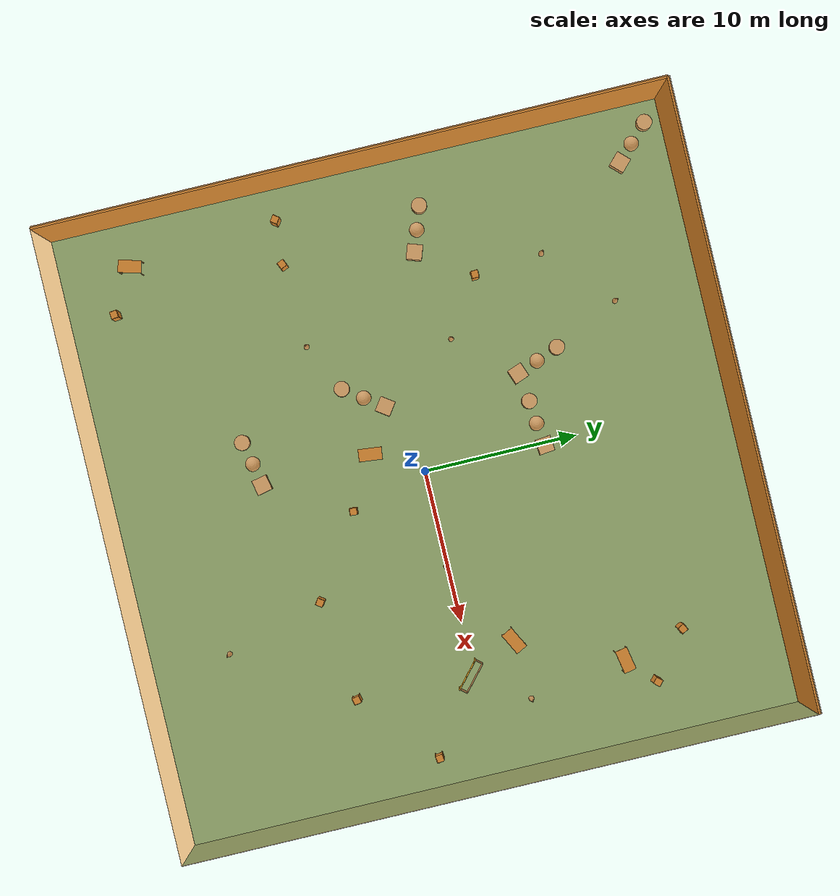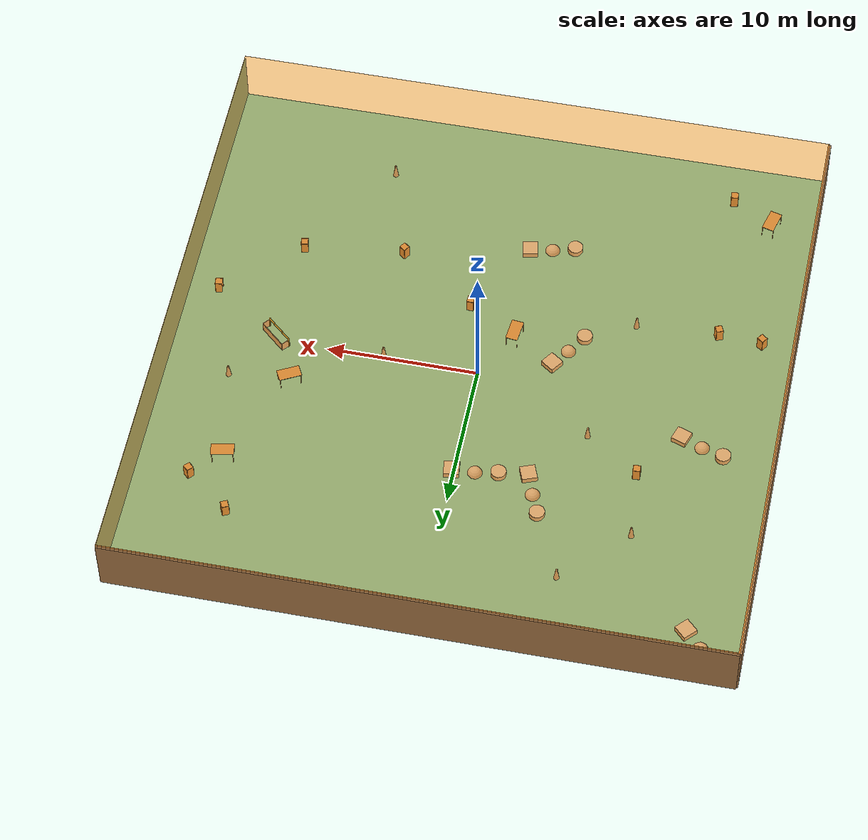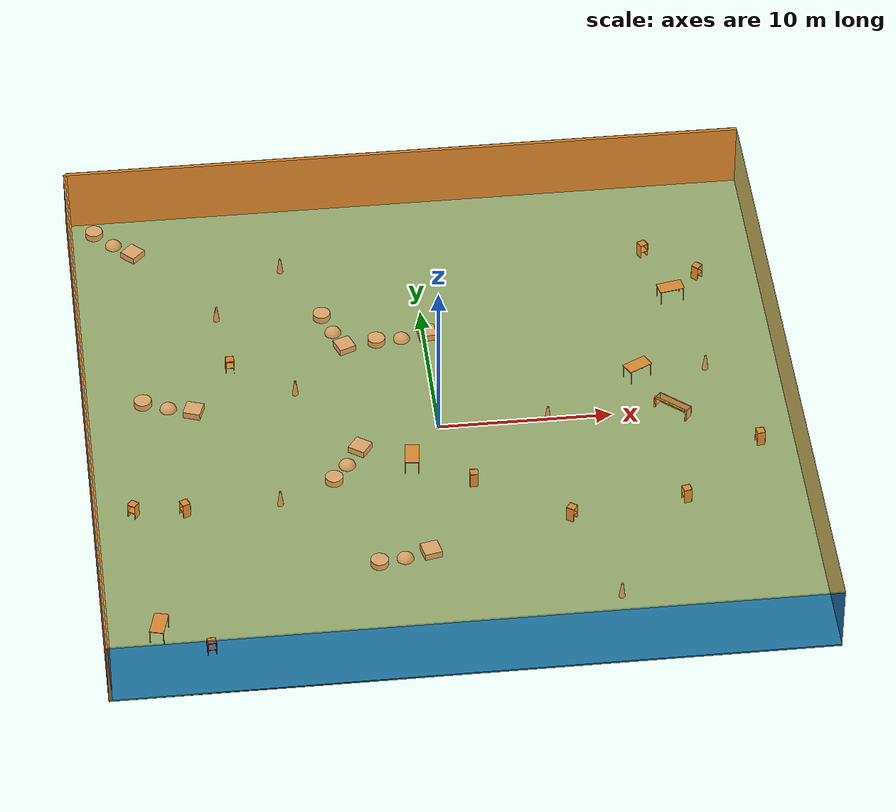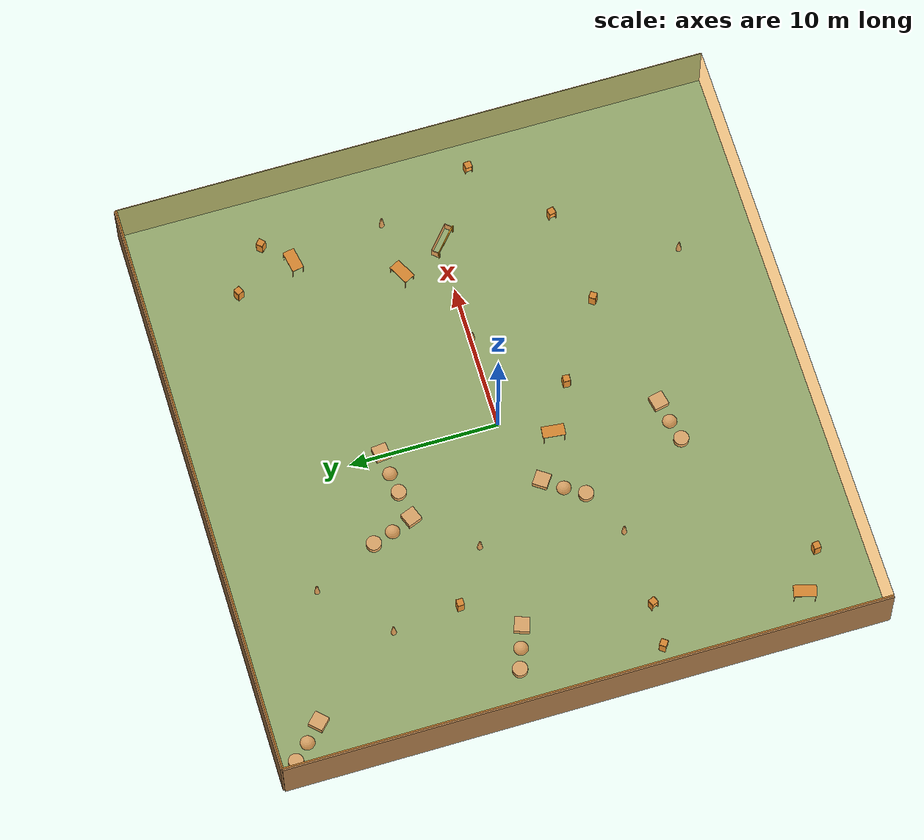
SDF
<sdf version="1.4">
 <world name="default">
  <physics type="ode">
   <max_step_size>0.001</max_step_size>
   <real_time_factor>1</real_time_factor>
   <real_time_update_rate>1000</real_time_update_rate>
   <gravity>0 0 -9.8</gravity>
  </physics>
  <scene><ambient>0.4 0.4 0.4 1</ambient><background>0.7 0.7 0.7 1</background><shadows>1</shadows></scene>
  <model name="Surrounding">
   <static>1</static>
   <link name="Ceiling">
    <collision name="Ceiling_Collision"><geometry><box><size>40 40 0.1</size></box></geometry></collision>
    <visual name="Ceiling_Visual">
     <geometry><box><size>40 40 0.1</size></box></geometry>
     <material>
      <script>
       <uri>file://media/materials/scripts/gazebo.material</uri>
       <name>Gazebo/OrangeTransparent</name>
      </script>
     </material>
    </visual>
    <pose>0 0 4.05 0 0 0</pose>
   </link>
   <link name="Wall_South">
    <collision name="Wall_South_Collision">
     <geometry><box><size>40 0 4</size></box></geometry>
     <pose>0 0 2 0 -0 0</pose>
    </collision>
    <visual name="Wall_South_Visual">
     <pose>0 0 2 0 -0 0</pose>
     <geometry><box><size>40 0 4</size></box></geometry>
     <material>
      <script><uri>file://media/materials/scripts/gazebo.material</uri><name>Gazebo/BlueTransparent</name></script>
     </material>
    </visual>
    <velocity_decay><linear>0</linear><angular>0</angular></velocity_decay>
    <pose>0 -20 0 0 -0 0</pose>
   </link>
   <link name="Wall_East">
    <collision name="Wall_21_Collision">
     <geometry><box><size>40 0 4</size></box></geometry>
     <pose>0 0 2 0 -0 0</pose>
    </collision>
    <visual name="Wall_21_Visual">
     <pose>0 0 2 0 -0 0</pose>
     <geometry><box><size>40 0 4</size></box></geometry>
     <material>
      <script><uri>file://media/materials/scripts/gazebo.material</uri><name>Gazebo/Turquoise</name></script>
     </material>
    </visual>
    <velocity_decay><linear>0</linear><angular>0</angular></velocity_decay>
    <pose>20 0 0 0 -0 1.5708</pose>
   </link>
   <link name="Wall_North">
    <collision name="Wall_22_Collision">
     <geometry><box><size>40 0.2 4</size></box></geometry>
     <pose>0 0 2 0 -0 0</pose>
    </collision>
    <visual name="Wall_22_Visual">
     <pose>0 0 2 0 -0 0</pose>
     <geometry><box><size>40 0.2 4</size></box></geometry>
     <material>
      <script><uri>file://media/materials/scripts/gazebo.material</uri><name>Gazebo/WoodFloor</name></script>
     </material>
    </visual>
    <velocity_decay><linear>0</linear><angular>0</angular></velocity_decay>
    <pose>0 20 0 0 -0 0</pose>
   </link>
   <link name="Wall_West">
    <collision name="Wall_23_Collision">
     <geometry><box><size>40 0.2 4</size></box></geometry>
     <pose>0 0 2 0 -0 0</pose>
    </collision>
    <visual name="Wall_23_Visual">
     <pose>0 0 2 0 -0 0</pose>
     <geometry><box><size>40 0.2 4</size></box></geometry>
     <material>
      <script><uri>file://media/materials/scripts/gazebo.material</uri><name>Gazebo/WoodFloor</name></script>
     </material>
    </visual>
    <velocity_decay><linear>0</linear><angular>0</angular></velocity_decay>
    <pose>-20 0 0 0 0 -1.5708</pose>
   </link>
   <link name="Ground_link">
    <collision name="collision">
     <pose>0 0 .05 0 -0 0</pose>
     <geometry><box><size>40 40 0.1</size></box></geometry>
    </collision>
    <visual name="visual">
     <pose>0 0 .05 0 -0 0</pose>
     <geometry><box><size>40 40 0.1</size></box></geometry>
     <material>
      <script>
       <uri>file://media/materials/scripts/gazebo.material</uri>
       <name>Gazebo/TurquoiseGlowOutline</name>
      </script>
     </material>
    </visual>
   </link>
   <static>1</static>
  </model>
  <spherical_coordinates>
   <surface_model>EARTH_WGS84</surface_model>
   <latitude_deg>0</latitude_deg>
   <longitude_deg>0</longitude_deg>
   <elevation>0</elevation>
   <heading_deg>0</heading_deg>
  </spherical_coordinates>
  <light name="lightball_0" type="diffuse">
   <diffuse>0.8 0.8 0.8 1</diffuse>
   <specular>0.2 0.2 0.2 1</specular>
   <attenuation>
    <range>100</range>
    <constant>0.7</constant>
    <linear>0.01</linear>
    <quadratic>0.001</quadratic>
   </attenuation>
   <direction>-0.5 0.1 -0.9</direction>
   <pose>-9.7606396661 0.221281390131 1.15812764139 0 0 0</pose>
  </light>
  <light name="lightball_1" type="diffuse">
   <diffuse>0.8 0.8 0.8 1</diffuse>
   <specular>0.2 0.2 0.2 1</specular>
   <attenuation>
    <range>100</range>
    <constant>0.7</constant>
    <linear>0.01</linear>
    <quadratic>0.001</quadratic>
   </attenuation>
   <direction>-0.5 0.1 -0.9</direction>
   <pose>-10.5922741695 -10.9294032383 3.65049363932 0 0 0</pose>
  </light>
  <light name="lightball_2" type="diffuse">
   <diffuse>0.8 0.8 0.8 1</diffuse>
   <specular>0.2 0.2 0.2 1</specular>
   <attenuation>
    <range>100</range>
    <constant>0.7</constant>
    <linear>0.01</linear>
    <quadratic>0.001</quadratic>
   </attenuation>
   <direction>-0.5 0.1 -0.9</direction>
   <pose>11.7869716686 -15.1154152183 0.71364432753 0 0 0</pose>
  </light>
  <light name="lightball_3" type="diffuse">
   <diffuse>0.8 0.8 0.8 1</diffuse>
   <specular>0.2 0.2 0.2 1</specular>
   <attenuation>
    <range>100</range>
    <constant>0.7</constant>
    <linear>0.01</linear>
    <quadratic>0.001</quadratic>
   </attenuation>
   <direction>-0.5 0.1 -0.9</direction>
   <pose>17.021977673 6.5437450327 2.73842415213 0 0 0</pose>
  </light>
  <light name="lightball_4" type="diffuse">
   <diffuse>0.8 0.8 0.8 1</diffuse>
   <specular>0.2 0.2 0.2 1</specular>
   <attenuation>
    <range>100</range>
    <constant>0.7</constant>
    <linear>0.01</linear>
    <quadratic>0.001</quadratic>
   </attenuation>
   <direction>-0.5 0.1 -0.9</direction>
   <pose>-11.2297050199 3.01559489762 3.01287988308 0 0 0</pose>
  </light>
  <light name="lightball_5" type="diffuse">
   <diffuse>0.8 0.8 0.8 1</diffuse>
   <specular>0.2 0.2 0.2 1</specular>
   <attenuation>
    <range>100</range>
    <constant>0.7</constant>
    <linear>0.01</linear>
    <quadratic>0.001</quadratic>
   </attenuation>
   <direction>-0.5 0.1 -0.9</direction>
   <pose>-14.4260349838 10.7106554256 1.64796654381 0 0 0</pose>
  </light>
  <include><uri>model://table</uri><pose>-17.0137342786 -15.2603316202 0 0 0 1.3055095875</pose></include>
  <include><uri>model://cabinet</uri><pose>-17.7895561184 -5.59956686028 0 0 0 0.940619874511</pose></include>
  <include>
   <uri>model://textured_shapes</uri>
   <pose>-17.4283982419 17.7743422524 0 0 0 0.799266095883</pose>
  </include>
  <include><uri>model://cabinet</uri><pose>-14.2600153314 -16.9411989606 0 0 0 1.66447491707</pose></include>
  <include><uri>model://cabinet</uri><pose>-14.9130199501 -5.80853070971 0 0 0 0.400079792939</pose></include>
  <include>
   <uri>model://textured_shapes</uri>
   <pose>-15.229467011 3.06902251867 0 0 0 1.23833013626</pose>
  </include>
  <include><uri>model://cabinet</uri><pose>-11.453946497 5.97109841369 0 0 0 1.59388563478</pose></include>
  <include>
   <uri>model://construction_cone</uri>
   <pose>-11.881075511 10.5020886874 0 0 0 1.97725563815</pose>
  </include>
  <include>
   <uri>model://construction_cone</uri>
   <pose>-9.52808623785 -5.56432133897 0 0 0 0.578979817557</pose>
  </include>
  <include>
   <uri>model://construction_cone</uri>
   <pose>-7.88230173572 3.59185276161 0 0 0 3.09021396437</pose>
  </include>
  <include>
   <uri>model://construction_cone</uri>
   <pose>-7.82416688008 14.4093316284 0 0 0 1.91486140252</pose>
  </include>
  <include>
   <uri>model://textured_shapes</uri>
   <pose>-5.49293626399 -2.75983868856 0 0 0 2.53040360127</pose>
  </include>
  <include>
   <uri>model://textured_shapes</uri>
   <pose>-5.2412727765 8.64652890589 0 0 0 0.364305113569</pose>
  </include>
  <include>
   <uri>model://textured_shapes</uri>
   <pose>-3.00945463283 -10.6862794625 0 0 0 1.77754414384</pose>
  </include>
  <include><uri>model://table</uri><pose>-1.84439446529 -3.15434863981 0 0 0 1.45992570863</pose></include>
  <include>
   <uri>model://textured_shapes</uri>
   <pose>-1.32963348514 7.68891172177 0 0 0 1.67655862176</pose>
  </include>
  <include><uri>model://cabinet</uri><pose>1.45261165522 -5.04275705301 0 0 0 3.0834606467</pose></include>
  <include><uri>model://cabinet</uri><pose>6.59752028924 -8.44936019918 0 0 0 2.5397934971</pose></include>
  <include>
   <uri>model://construction_cone</uri>
   <pose>6.25652535214 -0.113920372047 0 0 0 3.01969614826</pose>
  </include>
  <include>
   <uri>model://construction_cone</uri>
   <pose>8.55279360121 -14.9515711726 0 0 0 1.54493218341</pose>
  </include>
  <include><uri>model://cabinet</uri><pose>13.18701221 -7.61542747699 0 0 0 0.193527461225</pose></include>
  <include>
   <uri>model://robocup_3Dsim_goal</uri>
   <pose>13.2690488476 -0.394742889478 0 0 0 0.852007787</pose>
  </include>
  <include><uri>model://table</uri><pose>11.821548642 3.00764204933 0 0 0 0.478666623578</pose></include>
  <include><uri>model://cabinet</uri><pose>13.5654594881 13.6191395232 0 0 0 2.03279201292</pose></include>
  <include>
   <uri>model://construction_cone</uri>
   <pose>15.8155938362 3.25676152097 0 0 0 3.13269966378</pose>
  </include>
  <include><uri>model://table</uri><pose>14.665442858 9.60880948253 0 0 0 0.188193192885</pose></include>
  <include><uri>model://cabinet</uri><pose>16.4828694873 11.3058171132 0 0 0 2.39244426043</pose></include>
  <include><uri>model://cabinet</uri><pose>18.0060919427 -3.32736802631 0 0 0 0.113933734099</pose></include>
 </world>
</sdf>

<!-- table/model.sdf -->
<sdf version="1.5">
  <model name="table">
    <static>true</static>
    <link name="link">
      <collision name="surface">
        <pose>0 0 1.0 0 0 0</pose>
        <geometry>
          <box>
            <size>1.5 0.8 0.03</size>
          </box>
        </geometry>
        <surface>
          <friction>
            <ode>
              <mu>0.6</mu>
              <mu2>0.6</mu2>
            </ode>
          </friction>
        </surface>
      </collision>
      <visual name="visual1">
        <pose>0 0 1.0 0 0 0</pose>
        <geometry>
          <box>
            <size>1.5 0.8 0.03</size>
          </box>
        </geometry>
        <material>
          <script>
            <uri>model://media/materials/scripts/gazebo.material</uri>
            <name>Gazebo/Wood</name>
          </script>
        </material>
      </visual>
      <collision name="front_left_leg">
        <pose>0.68 0.38 0.5 0 0 0</pose>
        <geometry>
          <cylinder>
            <radius>0.02</radius>
            <length>1.0</length>
          </cylinder>
        </geometry>
      </collision>
      <visual name="front_left_leg">
        <pose>0.68 0.38 0.5 0 0 0</pose>
        <geometry>
          <cylinder>
            <radius>0.02</radius>
            <length>1.0</length>
          </cylinder>
        </geometry>
        <material>
          <script>
            <uri>model://media/materials/scripts/gazebo.material</uri>
            <name>Gazebo/Grey</name>
          </script>
        </material>
      </visual>
      <collision name="front_right_leg">
        <pose>0.68 -0.38 0.5 0 0 0</pose>
        <geometry>
          <cylinder>
            <radius>0.02</radius>
            <length>1.0</length>
          </cylinder>
        </geometry>
      </collision>
      <visual name="front_right_leg">
        <pose>0.68 -0.38 0.5 0 0 0</pose>
        <geometry>
          <cylinder>
            <radius>0.02</radius>
            <length>1.0</length>
          </cylinder>
        </geometry>
        <material>
          <script>
            <uri>model://media/materials/scripts/gazebo.material</uri>
            <name>Gazebo/Grey</name>
          </script>
        </material>
      </visual>
      <collision name="back_right_leg">
        <pose>-0.68 -0.38 0.5 0 0 0</pose>
        <geometry>
          <cylinder>
            <radius>0.02</radius>
            <length>1.0</length>
          </cylinder>
        </geometry>
      </collision>
      <visual name="back_right_leg">
        <pose>-0.68 -0.38 0.5 0 0 0</pose>
        <geometry>
          <cylinder>
            <radius>0.02</radius>
            <length>1.0</length>
          </cylinder>
        </geometry>
        <material>
          <script>
            <uri>model://media/materials/scripts/gazebo.material</uri>
            <name>Gazebo/Grey</name>
          </script>
        </material>
      </visual>
      <collision name="back_left_leg">
        <pose>-0.68 0.38 0.5 0 0 0</pose>
        <geometry>
          <cylinder>
            <radius>0.02</radius>
            <length>1.0</length>
          </cylinder>
        </geometry>
      </collision>
      <visual name="back_left_leg">
        <pose>-0.68 0.38 0.5 0 0 0</pose>
        <geometry>
          <cylinder>
            <radius>0.02</radius>
            <length>1.0</length>
          </cylinder>
        </geometry>
        <material>
          <script>
            <uri>model://media/materials/scripts/gazebo.material</uri>
            <name>Gazebo/Grey</name>
          </script>
        </material>
      </visual>
    </link>
  </model>
</sdf>

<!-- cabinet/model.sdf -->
<sdf version="1.5">
  <model name="cabinet">
    <static>true</static>
    <link name="cabinet_bottom_plate">
      <inertial>
        <pose>0 0 -1 0 0 0</pose>
        <inertia>
          <ixx>2.050000</ixx>
          <ixy>0</ixy>
          <ixz>0</ixz>
          <iyy>2.050000</iyy>
          <iyz>0</iyz>
          <izz>2.050000</izz>
        </inertia>
        <mass>25.000000</mass>
      </inertial>
      <collision name="cabinet_bottom_plate_geom">
        <pose>0 0 0.010000 0 0 0</pose>
        <geometry>
          <box>
            <size>0.450000 0.450000 0.020000</size>
          </box>
        </geometry>
      </collision>
      <visual name="cabinet_bottom_plate_geom_visual">
        <pose>0 0 0.010000 0 0 0</pose>
        <geometry>
          <box>
            <size>0.450000 0.450000 0.020000</size>
          </box>
        </geometry>
        <material>
          <script>
            <uri>model://media/materials/scripts/gazebo.material</uri>
            <name>Gazebo/Wood</name>
          </script>
        </material>
      </visual>
      <collision name="cabinet_bottom_plate_geom_cabinet_back_plate">
        <pose>0.235000 0 0.510000 0 0 0</pose>
        <geometry>
          <box>
            <size>0.020000 0.450000 1.020000</size>
          </box>
        </geometry>
      </collision>
      <visual name="cabinet_bottom_plate_geom_cabinet_back_plate_visual">
        <pose>0.235000 0 0.510000 0 0 0</pose>
        <geometry>
          <box>
            <size>0.020000 0.450000 1.020000</size>
          </box>
        </geometry>
        <material>
          <script>
            <uri>model://media/materials/scripts/gazebo.material</uri>
            <name>Gazebo/Wood</name>
          </script>
        </material>
      </visual>
      <collision name="cabinet_bottom_plate_geom_cabinet_left_plate">
        <pose>0 0.235000 0.510000 0 0 0</pose>
        <geometry>
          <box>
            <size>0.450000 0.020000 1.020000</size>
          </box>
        </geometry>
      </collision>
      <visual name="cabinet_bottom_plate_geom_cabinet_left_plate_visual">
        <pose>0 0.235000 0.510000 0 0 0</pose>
        <geometry>
          <box>
            <size>0.450000 0.020000 1.020000</size>
          </box>
        </geometry>
        <material>
          <script>
            <uri>model://media/materials/scripts/gazebo.material</uri>
            <name>Gazebo/Wood</name>
          </script>
        </material>
      </visual>
      <collision name="cabinet_bottom_plate_geom_cabinet_middle_plate">
        <pose>0 0 0.510000 0 0 0</pose>
        <geometry>
          <box>
            <size>0.450000 0.450000 0.020000</size>
          </box>
        </geometry>
      </collision>
      <visual name="cabinet_bottom_plate_geom_cabinet_middle_plate_visual">
        <pose>0 0 0.510000 0 0 0</pose>
        <geometry>
          <box>
            <size>0.450000 0.450000 0.020000</size>
          </box>
        </geometry>
        <material>
          <script>
            <uri>model://media/materials/scripts/gazebo.material</uri>
            <name>Gazebo/Wood</name>
          </script>
        </material>
      </visual>
      <collision name="cabinet_bottom_plate_geom_cabinet_right_plate">
        <pose>0 -0.235000 0.510000 0 0 0</pose>
        <geometry>
          <box>
            <size>0.450000 0.020000 1.020000</size>
          </box>
        </geometry>
      </collision>
      <visual name="cabinet_bottom_plate_geom_cabinet_right_plate_visual">
        <pose>0 -0.235000 0.510000 0 0 0</pose>
        <geometry>
          <box>
            <size>0.450000 0.020000 1.020000</size>
          </box>
        </geometry>
        <material>
          <script>
            <uri>model://media/materials/scripts/gazebo.material</uri>
            <name>Gazebo/Wood</name>
          </script>
        </material>
      </visual>
      <collision name="cabinet_bottom_plate_geom_cabinet_top_plate">
        <pose>0 0 1.010000 0 0 0</pose>
        <geometry>
          <box>
            <size>0.450000 0.450000 0.020000</size>
          </box>
        </geometry>
      </collision>
      <visual name="cabinet_bottom_plate_geom_cabinet_top_plate_visual">
        <pose>0 0 1.010000 0 0 0</pose>
        <geometry>
          <box>
            <size>0.450000 0.450000 0.020000</size>
          </box>
        </geometry>
        <material>
          <script>
            <uri>model://media/materials/scripts/gazebo.material</uri>
            <name>Gazebo/Wood</name>
          </script>
        </material>
      </visual>
    </link>
  </model>
</sdf>

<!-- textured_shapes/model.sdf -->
<sdf version="1.6">
  <model name="textured_shapes">
    <pose>0 0 0.5 0 0 0</pose>
    <link name="box">
      <pose>0 -1.5 0 0 0 0</pose>
      <collision name="collision">
        <geometry>
          <box>
            <size>1 1 1</size>
          </box>
        </geometry>
      </collision>
      <visual name="visual">
        <geometry>
          <box>
            <size>1 1 1</size>
          </box>
        </geometry>
        <material>
          <script>
            <uri>model://../model_source/models/textured_shapes/materials/scripts</uri>
            <uri>model://../model_source/models/textured_shapes/materials/textures</uri>
            <name>TexturedShape/Squares</name>
          </script>
        </material>
      </visual>
    </link>
    <link name="sphere">
      <collision name="collision">
        <geometry>
          <sphere>
            <radius>0.5</radius>
          </sphere>
        </geometry>
      </collision>
      <visual name="visual">
        <geometry>
          <sphere>
            <radius>0.5</radius>
          </sphere>
        </geometry>
        <material>
          <script>
            <uri>model://../model_source/models/textured_shapes/materials/scripts</uri>
            <uri>model://../model_source/models/textured_shapes/materials/textures</uri>
            <name>TexturedShape/Squares</name>
          </script>
        </material>
      </visual>
    </link>
    <link name="cylinder">
      <pose>0 1.5 0 0 0 0</pose>
      <collision name="collision">
        <geometry>
          <cylinder>
            <radius>0.5</radius>
            <length>1</length>
          </cylinder>
        </geometry>
      </collision>
      <visual name="visual">
        <geometry>
          <cylinder>
            <radius>0.5</radius>
            <length>1</length>
          </cylinder>
        </geometry>
        <material>
          <script>
            <uri>model://../model_source/models/textured_shapes/materials/scripts</uri>
            <uri>model://../model_source/models/textured_shapes/materials/textures</uri>
            <name>TexturedShape/Squares</name>
          </script>
        </material>
      </visual>
    </link>
  </model>
</sdf>

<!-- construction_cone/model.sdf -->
<sdf version="1.5">
  <model name="Construction Cone">
    <link name="link">
      <collision name="collision">
        <geometry>
          <mesh>
            <scale>10 10 10</scale>
            <uri>file://isr-testbed/construction_cone/meshes/construction_cone.dae</uri>
          </mesh>
        </geometry>
      </collision>
      <visual name="visual">
        <geometry>
          <mesh>
            <scale>10 10 10</scale>
            <uri>file://isr-testbed/construction_cone/meshes/construction_cone.dae</uri>
          </mesh>
        </geometry>
      </visual>
    </link>
  </model>
</sdf>

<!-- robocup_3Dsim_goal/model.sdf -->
<sdf version="1.5">
  <model name="robocup_3d_goal">
    <static>true</static>
    <link name="left_post">
      <pose>0 1.05 0.45 0 0 0</pose>
      <collision name="collision">
        <geometry>
          <cylinder>
            <radius>0.05</radius>
            <length>0.9</length>
          </cylinder>
        </geometry>
      </collision>
      <visual name="visual">
        <geometry>
          <cylinder>
            <radius>0.05</radius>
            <length>0.9</length>
          </cylinder>
        </geometry>
        <material>
          <script>
            <uri>file://media/materials/scripts/gazebo.material</uri>
            <name>Gazebo/ZincYellow</name>
          </script>
        </material>
      </visual>
    </link>
    <link name="left_support_horiz_lower">
      <pose>0.30 1.05 0.01 0 0 0</pose>
      <collision name="collision">
        <geometry>
          <box>
            <size>0.50 0.02 0.02</size>
          </box>
        </geometry>
      </collision>
      <visual name="visual">
        <geometry>
          <box>
            <size>0.50 0.02 0.02</size>
          </box>
        </geometry>
        <material>
          <script>
            <uri>file://media/materials/scripts/gazebo.material</uri>
            <name>Gazebo/White</name>
          </script>
        </material>
      </visual>
    </link>
    <link name="left_support_horiz_upper">
      <pose>0.30 1.05 0.79 0 0 0</pose>
      <collision name="collision">
        <geometry>
          <box>
            <size>0.50 0.02 0.02</size>
          </box>
        </geometry>
      </collision>
      <visual name="visual">
        <geometry>
          <box>
            <size>0.50 0.02 0.02</size>
          </box>
        </geometry>
        <material>
          <script>
            <uri>file://media/materials/scripts/gazebo.material</uri>
            <name>Gazebo/White</name>
          </script>
        </material>
      </visual>
    </link>
    <link name="left_support_vertical">
      <pose>0.56 1.05 0.4 0 1.5708 0</pose>
      <collision name="collision">
        <geometry>
          <box>
            <size>0.80 0.02 0.02</size>
          </box>
        </geometry>
      </collision>
      <visual name="visual">
        <geometry>
          <box>
            <size>0.80 0.02 0.02</size>
          </box>
        </geometry>
        <material>
          <script>
            <uri>file://media/materials/scripts/gazebo.material</uri>
            <name>Gazebo/White</name>
          </script>
        </material>
      </visual>
    </link>
    <link name="right_support_horiz_lower">
      <pose>0.30 -1.05 0.01 0 0 0</pose>
      <collision name="collision">
        <geometry>
          <box>
            <size>0.50 0.02 0.02</size>
          </box>
        </geometry>
      </collision>
      <visual name="visual">
        <geometry>
          <box>
            <size>0.50 0.02 0.02</size>
          </box>
        </geometry>
        <material>
          <script>
            <uri>file://media/materials/scripts/gazebo.material</uri>
            <name>Gazebo/White</name>
          </script>
        </material>
      </visual>
    </link>
    <link name="right_support_horiz_upper">
      <pose>0.30 -1.05 0.79 0 0 0</pose>
      <collision name="collision">
        <geometry>
          <box>
            <size>0.50 0.02 0.02</size>
          </box>
        </geometry>
      </collision>
      <visual name="visual">
        <geometry>
          <box>
            <size>0.50 0.02 0.02</size>
          </box>
        </geometry>
        <material>
          <script>
            <uri>file://media/materials/scripts/gazebo.material</uri>
            <name>Gazebo/White</name>
          </script>
        </material>
      </visual>
    </link>
    <link name="right_support_vertical">
      <pose>0.56 -1.05 0.4 0 1.5708 0</pose>
      <collision name="collision">
        <geometry>
          <box>
            <size>0.80 0.02 0.02</size>
          </box>
        </geometry>
      </collision>
      <visual name="visual">
        <geometry>
          <box>
            <size>0.80 0.02 0.02</size>
          </box>
        </geometry>
        <material>
          <script>
            <uri>file://media/materials/scripts/gazebo.material</uri>
            <name>Gazebo/White</name>
          </script>
        </material>
      </visual>
    </link>
    <link name="center_support_horiz_lower">
      <pose>0.56 0 0.01 0 1.5708 0</pose>
      <collision name="collision">
        <geometry>
          <box>
            <size>0.02 2.08 0.02</size>
          </box>
        </geometry>
      </collision>
      <visual name="visual">
        <geometry>
          <box>
            <size>0.02 2.08 0.02</size>
          </box>
        </geometry>
        <material>
          <script>
            <uri>file://media/materials/scripts/gazebo.material</uri>
            <name>Gazebo/White</name>
          </script>
        </material>
      </visual>
    </link>
    <link name="center_support_horiz_upper">
      <pose>0.56 0 0.79 0 1.5708 0</pose>
      <collision name="collision">
        <geometry>
          <box>
            <size>0.02 2.08 0.02</size>
          </box>
        </geometry>
      </collision>
      <visual name="visual">
        <geometry>
          <box>
            <size>0.02 2.08 0.02</size>
          </box>
        </geometry>
        <material>
          <script>
            <uri>file://media/materials/scripts/gazebo.material</uri>
            <name>Gazebo/White</name>
          </script>
        </material>
      </visual>
    </link>
    <link name="right_post">
      <pose>0 -1.05 0.45 0 0 0</pose>
      <collision name="collision">
        <geometry>
          <cylinder>
            <radius>0.05</radius>
            <length>0.9</length>
          </cylinder>
        </geometry>
      </collision>
      <visual name="visual">
        <geometry>
          <cylinder>
            <radius>0.05</radius>
            <length>0.9</length>
          </cylinder>
        </geometry>
        <material>
          <script>
            <uri>file://media/materials/scripts/gazebo.material</uri>
            <name>Gazebo/ZincYellow</name>
          </script>
        </material>
      </visual>
    </link>
    <link name="crossbar">
      <pose>0 0 0.85 1.57 1.57 0</pose>
      <collision name="collision">
        <geometry>
          <cylinder>
            <radius>0.05</radius>
            <length>2.0</length>
          </cylinder>
        </geometry>
      </collision>
      <visual name="visual">
        <geometry>
          <cylinder>
            <radius>0.05</radius>
            <length>2.0</length>
          </cylinder>
        </geometry>
        <material>
          <script>
            <uri>file://media/materials/scripts/gazebo.material</uri>
            <name>Gazebo/ZincYellow</name>
          </script>
        </material>
      </visual>
    </link>
    <link name="center_net">
      <pose>0.56 0 0.40 0 0 0</pose>
      <collision name="collision">
        <geometry>
          <box>
            <size>0.01 2.1 0.80</size>
          </box>
        </geometry>
      </collision>
      <visual name="visual">
        <geometry>
          <box>
            <size>0.01 2.1 0.80</size>
          </box>
        </geometry>
        <material>
          <script>
            <uri>model://../model_source/models/robocup09_spl_field/materials/scripts/</uri>
            <uri>model://../model_source/models/robocup09_spl_field/materials/textures/</uri>
            <name>RoboCup/Net</name>
          </script>
        </material>
      </visual>
    </link>
    <link name="left_net">
      <pose>0.30 1.05 0.40 0 0 0</pose>
      <collision name="collision">
        <geometry>
          <box>
            <size>0.50 0.01 0.76</size>
          </box>
        </geometry>
      </collision>
      <visual name="visual">
        <geometry>
          <box>
            <size>0.50 0.01 0.76</size>
          </box>
        </geometry>
        <material>
          <script>
            <uri>model://../model_source/models/robocup09_spl_field/materials/scripts/</uri>
            <uri>model://../model_source/models/robocup09_spl_field/materials/textures/</uri>
            <name>RoboCup/Net</name>
          </script>
        </material>
      </visual>
    </link>
    <link name="right_net">
      <pose>0.30 -1.05 0.40 0 0 0</pose>
      <collision name="collision">
        <geometry>
          <box>
            <size>0.50 0.01 0.76</size>
          </box>
        </geometry>
      </collision>
      <visual name="visual">
        <geometry>
          <box>
            <size>0.50 0.01 0.76</size>
          </box>
        </geometry>
        <material>
          <script>
            <uri>model://../model_source/models/robocup09_spl_field/materials/scripts/</uri>
            <uri>model://../model_source/models/robocup09_spl_field/materials/textures/</uri>
            <name>RoboCup/Net</name>
          </script>
        </material>
      </visual>
    </link>
  </model>
</sdf>
